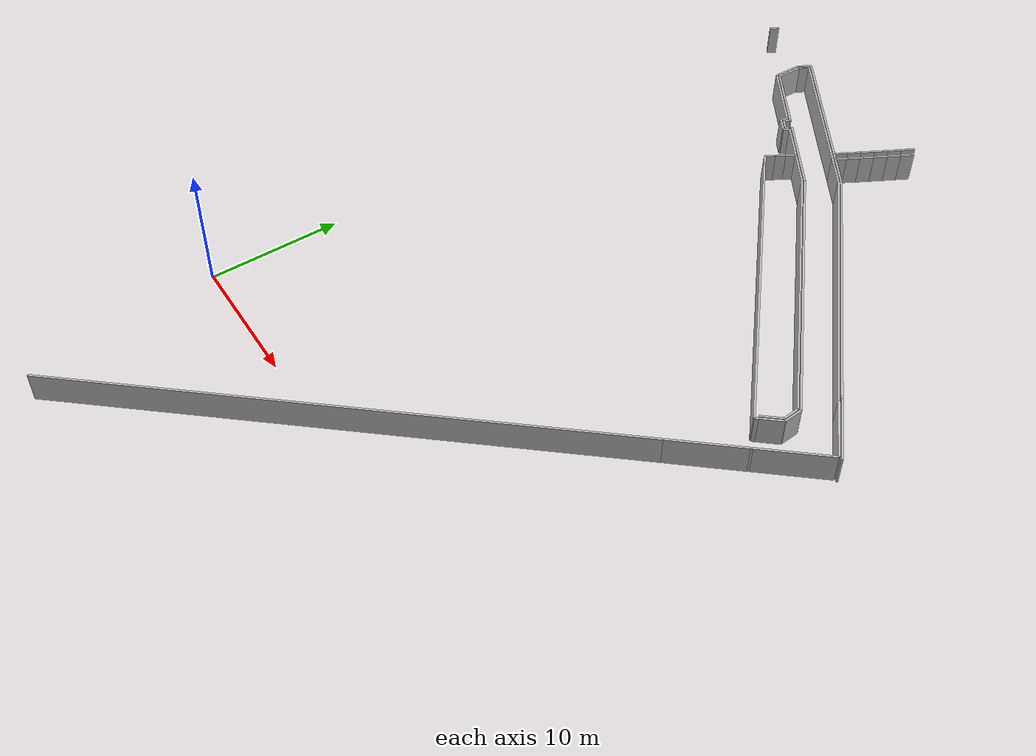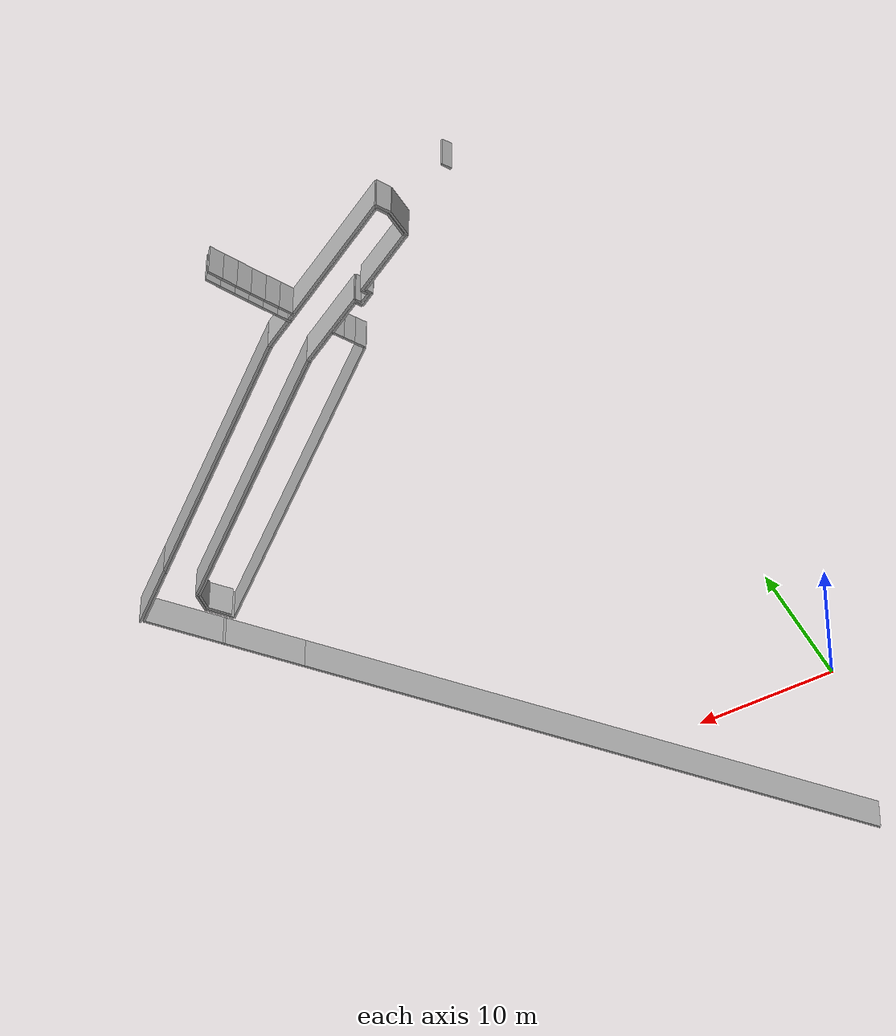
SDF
<?xml version="1.0" ?>
<sdf version="1.6">
  <model name="sps_0701">
    <pose frame="">0 0 0 0 -0 0</pose>
    <static>1</static>
    <self_collide>0</self_collide>
    <allow_auto_disable>0</allow_auto_disable>
    <link name="Wall161">
      <kinematic>0</kinematic>
      <gravity>1</gravity>
      <self_collide>0</self_collide>
      <collision name="collision">
        <geometry>
          <box>
            <size>21.7978 0.15 2.5</size>
          </box>
        </geometry>
        <pose frame="">0 0 0 0 -0 0</pose>
      </collision>
      <visual name="visual">
        <geometry>
          <box>
            <size>21.7978 0.15 2.5</size>
          </box>
        </geometry>
        <pose frame="">0 0 0 0 -0 0</pose>
        <cast_shadows>1</cast_shadows>
        <transparency>0.0</transparency>
      </visual>
      <pose frame="">25.3802 33.8894 1.25 0 0 -0.688117</pose>
    </link>
    <link name="Wall537">
      <kinematic>0</kinematic>
      <gravity>1</gravity>
      <self_collide>0</self_collide>
      <collision name="collision">
        <geometry>
          <box>
            <size>0.278779 0.15 2.5</size>
          </box>
        </geometry>
        <pose frame="">0 0 0 0 -0 0</pose>
      </collision>
      <visual name="visual">
        <geometry>
          <box>
            <size>0.278779 0.15 2.5</size>
          </box>
        </geometry>
        <pose frame="">0 0 0 0 -0 0</pose>
        <cast_shadows>1</cast_shadows>
        <transparency>0.0</transparency>
      </visual>
      <pose frame="">32.7358 24.0996 1.25 0 0 -2.26069</pose>
    </link>
    <link name="Wall538">
      <kinematic>0</kinematic>
      <gravity>1</gravity>
      <self_collide>0</self_collide>
      <collision name="collision">
        <geometry>
          <box>
            <size>1.24948 0.15 2.5</size>
          </box>
        </geometry>
        <pose frame="">0 0 0 0 -0 0</pose>
      </collision>
      <visual name="visual">
        <geometry>
          <box>
            <size>1.24948 0.15 2.5</size>
          </box>
        </geometry>
        <pose frame="">0 0 0 0 -0 0</pose>
        <cast_shadows>1</cast_shadows>
        <transparency>0.0</transparency>
      </visual>
      <pose frame="">33.6687 26.2439 1.25 0 -0 1.66796</pose>
    </link>
    <link name="Wall539">
      <kinematic>0</kinematic>
      <gravity>1</gravity>
      <self_collide>0</self_collide>
      <collision name="collision">
        <geometry>
          <box>
            <size>4.68794 0.15 2.5</size>
          </box>
        </geometry>
        <pose frame="">0 0 0 0 -0 0</pose>
      </collision>
      <visual name="visual">
        <geometry>
          <box>
            <size>4.68794 0.15 2.5</size>
          </box>
        </geometry>
        <pose frame="">0 0 0 0 -0 0</pose>
        <cast_shadows>1</cast_shadows>
        <transparency>0.0</transparency>
      </visual>
      <pose frame="">36.2801 28.1649 1.25 0 -0 2.45349</pose>
    </link>
    <link name="Wall540">
      <kinematic>0</kinematic>
      <gravity>1</gravity>
      <self_collide>0</self_collide>
      <collision name="collision">
        <geometry>
          <box>
            <size>20.8339 0.15 2.5</size>
          </box>
        </geometry>
        <pose frame="">0 0 0 0 -0 0</pose>
      </collision>
      <visual name="visual">
        <geometry>
          <box>
            <size>20.8339 0.15 2.5</size>
          </box>
        </geometry>
        <pose frame="">0 0 0 0 -0 0</pose>
        <cast_shadows>1</cast_shadows>
        <transparency>0.0</transparency>
      </visual>
      <pose frame="">26.4228 36.269 1.25 0 -0 2.45349</pose>
    </link>
    <link name="Wall862">
      <kinematic>0</kinematic>
      <gravity>1</gravity>
      <self_collide>0</self_collide>
      <collision name="collision">
        <geometry>
          <box>
            <size>5.12072 0.15 2.5</size>
          </box>
        </geometry>
        <pose frame="">0 0 0 0 -0 0</pose>
      </collision>
      <visual name="visual">
        <geometry>
          <box>
            <size>5.12072 0.15 2.5</size>
          </box>
        </geometry>
        <pose frame="">0 0 0 0 -0 0</pose>
        <cast_shadows>1</cast_shadows>
        <transparency>0.0</transparency>
      </visual>
      <pose frame="">8.61477 45.2415 1.25 0 -0 2.63254</pose>
    </link>
    <link name="Wall863">
      <kinematic>0</kinematic>
      <gravity>1</gravity>
      <self_collide>0</self_collide>
      <collision name="collision">
        <geometry>
          <box>
            <size>0.800268 0.15 2.5</size>
          </box>
        </geometry>
        <pose frame="">0 0 0 0 -0 0</pose>
      </collision>
      <visual name="visual">
        <geometry>
          <box>
            <size>0.800268 0.15 2.5</size>
          </box>
        </geometry>
        <pose frame="">0 0 0 0 -0 0</pose>
        <cast_shadows>1</cast_shadows>
        <transparency>0.0</transparency>
      </visual>
      <pose frame="">11.2273 43.4391 1.25 0 0 -0.508447</pose>
    </link>
    <link name="Wall867">
      <kinematic>0</kinematic>
      <gravity>1</gravity>
      <self_collide>0</self_collide>
      <collision name="collision">
        <geometry>
          <box>
            <size>10.1651 0.15 2.5</size>
          </box>
        </geometry>
        <pose frame="">0 0 0 0 -0 0</pose>
      </collision>
      <visual name="visual">
        <geometry>
          <box>
            <size>10.1651 0.15 2.5</size>
          </box>
        </geometry>
        <pose frame="">0 0 0 0 -0 0</pose>
        <cast_shadows>1</cast_shadows>
        <transparency>0.0</transparency>
      </visual>
      <pose frame="">11.3749 47.0215 1.25 0 0 -0.509148</pose>
    </link>
    <link name="Wall868">
      <kinematic>0</kinematic>
      <gravity>1</gravity>
      <self_collide>0</self_collide>
      <collision name="collision">
        <geometry>
          <box>
            <size>2.80678 0.15 2.5</size>
          </box>
        </geometry>
        <pose frame="">0 0 0 0 -0 0</pose>
      </collision>
      <visual name="visual">
        <geometry>
          <box>
            <size>2.80678 0.15 2.5</size>
          </box>
        </geometry>
        <pose frame="">0 0 0 0 -0 0</pose>
        <cast_shadows>1</cast_shadows>
        <transparency>0.0</transparency>
      </visual>
      <pose frame="">15.6233 41.3287 1.25 0 -0 2.63247</pose>
    </link>
    <link name="Wall869">
      <kinematic>0</kinematic>
      <gravity>1</gravity>
      <self_collide>0</self_collide>
      <collision name="collision">
        <geometry>
          <box>
            <size>5.88754 0.15 2.5</size>
          </box>
        </geometry>
        <pose frame="">0 0 0 0 -0 0</pose>
      </collision>
      <visual name="visual">
        <geometry>
          <box>
            <size>5.88754 0.15 2.5</size>
          </box>
        </geometry>
        <pose frame="">0 0 0 0 -0 0</pose>
        <cast_shadows>1</cast_shadows>
        <transparency>0.0</transparency>
      </visual>
      <pose frame="">14.391 42.2458 1.25 0 0 -0.50907</pose>
    </link>
    <link name="Wall1269">
      <kinematic>0</kinematic>
      <gravity>1</gravity>
      <self_collide>0</self_collide>
      <collision name="collision">
        <geometry>
          <box>
            <size>1.04957 0.15 2.5</size>
          </box>
        </geometry>
        <pose frame="">0 0 0 0 -0 0</pose>
      </collision>
      <visual name="visual">
        <geometry>
          <box>
            <size>1.04957 0.15 2.5</size>
          </box>
        </geometry>
        <pose frame="">0 0 0 0 -0 0</pose>
        <cast_shadows>1</cast_shadows>
        <transparency>0.0</transparency>
      </visual>
      <pose frame="">6.68124 49.0407 1.25 0 -0 1.06165</pose>
    </link>
    <link name="Wall1277">
      <kinematic>0</kinematic>
      <gravity>1</gravity>
      <self_collide>0</self_collide>
      <collision name="collision">
        <geometry>
          <box>
            <size>0.500684 0.15 2.5</size>
          </box>
        </geometry>
        <pose frame="">0 0 0 0 -0 0</pose>
      </collision>
      <visual name="visual">
        <geometry>
          <box>
            <size>0.500684 0.15 2.5</size>
          </box>
        </geometry>
        <pose frame="">0 0 0 0 -0 0</pose>
        <cast_shadows>1</cast_shadows>
        <transparency>0.0</transparency>
      </visual>
      <pose frame="">11.7757 43.1905 1.25 0 0 -2.07987</pose>
    </link>
    <link name="Wall1279">
      <kinematic>0</kinematic>
      <gravity>1</gravity>
      <self_collide>0</self_collide>
      <collision name="collision">
        <geometry>
          <box>
            <size>2.86369 0.15 2.5</size>
          </box>
        </geometry>
        <pose frame="">0 0 0 0 -0 0</pose>
      </collision>
      <visual name="visual">
        <geometry>
          <box>
            <size>2.86369 0.15 2.5</size>
          </box>
        </geometry>
        <pose frame="">0 0 0 0 -0 0</pose>
        <cast_shadows>1</cast_shadows>
        <transparency>0.0</transparency>
      </visual>
      <pose frame="">13.1478 42.7109 1.25 0 0 -0.509349</pose>
    </link>
    <link name="Wall1283">
      <kinematic>0</kinematic>
      <gravity>1</gravity>
      <self_collide>0</self_collide>
      <collision name="collision">
        <geometry>
          <box>
            <size>2.5506 0.15 2.5</size>
          </box>
        </geometry>
        <pose frame="">0 0 0 0 -0 0</pose>
      </collision>
      <visual name="visual">
        <geometry>
          <box>
            <size>2.5506 0.15 2.5</size>
          </box>
        </geometry>
        <pose frame="">0 0 0 0 -0 0</pose>
        <cast_shadows>1</cast_shadows>
        <transparency>0.0</transparency>
      </visual>
      <pose frame="">17.2627 43.5062 1.25 0 -0 2.63237</pose>
    </link>
    <link name="Wall1291">
      <kinematic>0</kinematic>
      <gravity>1</gravity>
      <self_collide>0</self_collide>
      <collision name="collision">
        <geometry>
          <box>
            <size>1.41499 0.15 2.5</size>
          </box>
        </geometry>
        <pose frame="">0 0 0 0 -0 0</pose>
      </collision>
      <visual name="visual">
        <geometry>
          <box>
            <size>1.41499 0.15 2.5</size>
          </box>
        </geometry>
        <pose frame="">0 0 0 0 -0 0</pose>
        <cast_shadows>1</cast_shadows>
        <transparency>0.0</transparency>
      </visual>
      <pose frame="">33.8673 26.2635 1.25 0 0 -1.47411</pose>
    </link>
    <link name="Wall1557">
      <kinematic>0</kinematic>
      <gravity>1</gravity>
      <self_collide>0</self_collide>
      <collision name="collision">
        <geometry>
          <box>
            <size>0.800215 0.15 2.5</size>
          </box>
        </geometry>
        <pose frame="">0 0 0 0 -0 0</pose>
      </collision>
      <visual name="visual">
        <geometry>
          <box>
            <size>0.800215 0.15 2.5</size>
          </box>
        </geometry>
        <pose frame="">0 0 0 0 -0 0</pose>
        <cast_shadows>1</cast_shadows>
        <transparency>0.0</transparency>
      </visual>
      <pose frame="">6.81945 48.878 1.25 0 0 -2.07928</pose>
    </link>
    <link name="Wall1563">
      <kinematic>0</kinematic>
      <gravity>1</gravity>
      <self_collide>0</self_collide>
      <collision name="collision">
        <geometry>
          <box>
            <size>3.06467 0.15 2.5</size>
          </box>
        </geometry>
        <pose frame="">0 0 0 0 -0 0</pose>
      </collision>
      <visual name="visual">
        <geometry>
          <box>
            <size>3.06467 0.15 2.5</size>
          </box>
        </geometry>
        <pose frame="">0 0 0 0 -0 0</pose>
        <cast_shadows>1</cast_shadows>
        <transparency>0.0</transparency>
      </visual>
      <pose frame="">17.1507 43.7971 1.25 0 0 -0.509221</pose>
    </link>
    <link name="Wall1572">
      <kinematic>0</kinematic>
      <gravity>1</gravity>
      <self_collide>0</self_collide>
      <collision name="collision">
        <geometry>
          <box>
            <size>1.75015 0.15 2.5</size>
          </box>
        </geometry>
        <pose frame="">0 0 0 0 -0 0</pose>
      </collision>
      <visual name="visual">
        <geometry>
          <box>
            <size>1.75015 0.15 2.5</size>
          </box>
        </geometry>
        <pose frame="">0 0 0 0 -0 0</pose>
        <cast_shadows>1</cast_shadows>
        <transparency>0.0</transparency>
      </visual>
      <pose frame="">33.3801 24.8832 1.25 0 0 -2.25866</pose>
    </link>
    <link name="Wall1874">
      <kinematic>0</kinematic>
      <gravity>1</gravity>
      <self_collide>0</self_collide>
      <collision name="collision">
        <geometry>
          <box>
            <size>0.500613 0.15 2.5</size>
          </box>
        </geometry>
        <pose frame="">0 0 0 0 -0 0</pose>
      </collision>
      <visual name="visual">
        <geometry>
          <box>
            <size>0.500613 0.15 2.5</size>
          </box>
        </geometry>
        <pose frame="">0 0 0 0 -0 0</pose>
        <cast_shadows>1</cast_shadows>
        <transparency>0.0</transparency>
      </visual>
      <pose frame="">10.9999 43.8524 1.25 0 0 -2.08037</pose>
    </link>
    <link name="Wall1890">
      <kinematic>0</kinematic>
      <gravity>1</gravity>
      <self_collide>0</self_collide>
      <collision name="collision">
        <geometry>
          <box>
            <size>25.1615 0.15 2.5</size>
          </box>
        </geometry>
        <pose frame="">0 0 0 0 -0 0</pose>
      </collision>
      <visual name="visual">
        <geometry>
          <box>
            <size>25.1615 0.15 2.5</size>
          </box>
        </geometry>
        <pose frame="">0 0 0 0 -0 0</pose>
        <cast_shadows>1</cast_shadows>
        <transparency>0.0</transparency>
      </visual>
      <pose frame="">22.9325 31.986 1.25 0 -0 2.45306</pose>
    </link>
    <link name="Wall1891">
      <kinematic>0</kinematic>
      <gravity>1</gravity>
      <self_collide>0</self_collide>
      <collision name="collision">
        <geometry>
          <box>
            <size>1.66707 0.15 2.5</size>
          </box>
        </geometry>
        <pose frame="">0 0 0 0 -0 0</pose>
      </collision>
      <visual name="visual">
        <geometry>
          <box>
            <size>1.66707 0.15 2.5</size>
          </box>
        </geometry>
        <pose frame="">0 0 0 0 -0 0</pose>
        <cast_shadows>1</cast_shadows>
        <transparency>0.0</transparency>
      </visual>
      <pose frame="">33.1996 24.9785 1.25 0 -0 0.882166</pose>
    </link>
    <link name="Wall1894">
      <kinematic>0</kinematic>
      <gravity>1</gravity>
      <self_collide>0</self_collide>
      <collision name="collision">
        <geometry>
          <box>
            <size>5.53125 0.15 2.5</size>
          </box>
        </geometry>
        <pose frame="">0 0 0 0 -0 0</pose>
      </collision>
      <visual name="visual">
        <geometry>
          <box>
            <size>5.53125 0.15 2.5</size>
          </box>
        </geometry>
        <pose frame="">0 0 0 0 -0 0</pose>
        <cast_shadows>1</cast_shadows>
        <transparency>0.0</transparency>
      </visual>
      <pose frame="">36.3344 24.5399 1.25 0 -0 0.882734</pose>
    </link>
    <link name="Wall2209">
      <kinematic>0</kinematic>
      <gravity>1</gravity>
      <self_collide>0</self_collide>
      <collision name="collision">
        <geometry>
          <box>
            <size>2.09371 0.15 2.5</size>
          </box>
        </geometry>
        <pose frame="">0 0 0 0 -0 0</pose>
      </collision>
      <visual name="visual">
        <geometry>
          <box>
            <size>2.09371 0.15 2.5</size>
          </box>
        </geometry>
        <pose frame="">0 0 0 0 -0 0</pose>
        <cast_shadows>1</cast_shadows>
        <transparency>0.0</transparency>
      </visual>
      <pose frame="">6.40224 47.5359 1.25 0 -0 1.54864</pose>
    </link>
    <link name="Wall2210">
      <kinematic>0</kinematic>
      <gravity>1</gravity>
      <self_collide>0</self_collide>
      <collision name="collision">
        <geometry>
          <box>
            <size>0.500379 0.15 2.5</size>
          </box>
        </geometry>
        <pose frame="">0 0 0 0 -0 0</pose>
      </collision>
      <visual name="visual">
        <geometry>
          <box>
            <size>0.500379 0.15 2.5</size>
          </box>
        </geometry>
        <pose frame="">0 0 0 0 -0 0</pose>
        <cast_shadows>1</cast_shadows>
        <transparency>0.0</transparency>
      </visual>
      <pose frame="">10.7281 43.7755 1.25 0 -0 1.05956</pose>
    </link>
    <link name="Wall2211">
      <kinematic>0</kinematic>
      <gravity>1</gravity>
      <self_collide>0</self_collide>
      <collision name="collision">
        <geometry>
          <box>
            <size>5.20018 0.15 2.5</size>
          </box>
        </geometry>
        <pose frame="">0 0 0 0 -0 0</pose>
      </collision>
      <visual name="visual">
        <geometry>
          <box>
            <size>5.20018 0.15 2.5</size>
          </box>
        </geometry>
        <pose frame="">0 0 0 0 -0 0</pose>
        <cast_shadows>1</cast_shadows>
        <transparency>0.0</transparency>
      </visual>
      <pose frame="">8.85165 45.3381 1.25 0 0 -0.509078</pose>
    </link>
    <link name="Wall2213">
      <kinematic>0</kinematic>
      <gravity>1</gravity>
      <self_collide>0</self_collide>
      <collision name="collision">
        <geometry>
          <box>
            <size>1.20039 0.15 2.5</size>
          </box>
        </geometry>
        <pose frame="">0 0 0 0 -0 0</pose>
      </collision>
      <visual name="visual">
        <geometry>
          <box>
            <size>1.20039 0.15 2.5</size>
          </box>
        </geometry>
        <pose frame="">0 0 0 0 -0 0</pose>
        <cast_shadows>1</cast_shadows>
        <transparency>0.0</transparency>
      </visual>
      <pose frame="">11.1297 43.2646 1.25 0 -0 2.63218</pose>
    </link>
    <link name="Wall2214">
      <kinematic>0</kinematic>
      <gravity>1</gravity>
      <self_collide>0</self_collide>
      <collision name="collision">
        <geometry>
          <box>
            <size>0.499623 0.15 2.5</size>
          </box>
        </geometry>
        <pose frame="">0 0 0 0 -0 0</pose>
      </collision>
      <visual name="visual">
        <geometry>
          <box>
            <size>0.499623 0.15 2.5</size>
          </box>
        </geometry>
        <pose frame="">0 0 0 0 -0 0</pose>
        <cast_shadows>1</cast_shadows>
        <transparency>0.0</transparency>
      </visual>
      <pose frame="">11.6987 43.4624 1.25 0 -0 1.06151</pose>
    </link>
    <link name="Wall2219">
      <kinematic>0</kinematic>
      <gravity>1</gravity>
      <self_collide>0</self_collide>
      <collision name="collision">
        <geometry>
          <box>
            <size>10.462 0.15 2.5</size>
          </box>
        </geometry>
        <pose frame="">0 0 0 0 -0 0</pose>
      </collision>
      <visual name="visual">
        <geometry>
          <box>
            <size>10.462 0.15 2.5</size>
          </box>
        </geometry>
        <pose frame="">0 0 0 0 -0 0</pose>
        <cast_shadows>1</cast_shadows>
        <transparency>0.0</transparency>
      </visual>
      <pose frame="">11.5817 46.6777 1.25 0 -0 2.63244</pose>
    </link>
    <link name="Wall2226">
      <kinematic>0</kinematic>
      <gravity>1</gravity>
      <self_collide>0</self_collide>
      <collision name="collision">
        <geometry>
          <box>
            <size>21.6965 0.15 2.5</size>
          </box>
        </geometry>
        <pose frame="">0 0 0 0 -0 0</pose>
      </collision>
      <visual name="visual">
        <geometry>
          <box>
            <size>21.6965 0.15 2.5</size>
          </box>
        </geometry>
        <pose frame="">0 0 0 0 -0 0</pose>
        <cast_shadows>1</cast_shadows>
        <transparency>0.0</transparency>
      </visual>
      <pose frame="">25.2284 33.7552 1.25 0 -0 2.45348</pose>
    </link>
    <link name="Wall2230">
      <kinematic>0</kinematic>
      <gravity>1</gravity>
      <self_collide>0</self_collide>
      <collision name="collision">
        <geometry>
          <box>
            <size>42.7461 0.15 2.5</size>
          </box>
        </geometry>
        <pose frame="">0 0 0 0 -0 0</pose>
      </collision>
      <visual name="visual">
        <geometry>
          <box>
            <size>42.7461 0.15 2.5</size>
          </box>
        </geometry>
        <pose frame="">0 0 0 0 -0 0</pose>
        <cast_shadows>1</cast_shadows>
        <transparency>0.0</transparency>
      </visual>
      <pose frame="">17.2958 1.38377 1.25 0 -0 0.882668</pose>
    </link>
    <link name="Wall2231">
      <kinematic>0</kinematic>
      <gravity>1</gravity>
      <self_collide>0</self_collide>
      <collision name="collision">
        <geometry>
          <box>
            <size>5.66817 0.15 2.5</size>
          </box>
        </geometry>
        <pose frame="">0 0 0 0 -0 0</pose>
      </collision>
      <visual name="visual">
        <geometry>
          <box>
            <size>5.66817 0.15 2.5</size>
          </box>
        </geometry>
        <pose frame="">0 0 0 0 -0 0</pose>
        <cast_shadows>1</cast_shadows>
        <transparency>0.0</transparency>
      </visual>
      <pose frame="">32.6695 20.0822 1.25 0 -0 0.882668</pose>
    </link>
    <link name="Wall2232">
      <kinematic>0</kinematic>
      <gravity>1</gravity>
      <self_collide>0</self_collide>
      <collision name="collision">
        <geometry>
          <box>
            <size>0.171066 0.15 2.5</size>
          </box>
        </geometry>
        <pose frame="">0 0 0 0 -0 0</pose>
      </collision>
      <visual name="visual">
        <geometry>
          <box>
            <size>0.171066 0.15 2.5</size>
          </box>
        </geometry>
        <pose frame="">0 0 0 0 -0 0</pose>
        <cast_shadows>1</cast_shadows>
        <transparency>0.0</transparency>
      </visual>
      <pose frame="">34.5238 22.3374 1.25 0 -0 0.882668</pose>
    </link>
    <link name="Wall2610">
      <kinematic>0</kinematic>
      <gravity>1</gravity>
      <self_collide>0</self_collide>
      <collision name="collision">
        <geometry>
          <box>
            <size>1.92371 0.15 2.5</size>
          </box>
        </geometry>
        <pose frame="">0 0 0 0 -0 0</pose>
      </collision>
      <visual name="visual">
        <geometry>
          <box>
            <size>1.92371 0.15 2.5</size>
          </box>
        </geometry>
        <pose frame="">0 0 0 0 -0 0</pose>
        <cast_shadows>1</cast_shadows>
        <transparency>0.0</transparency>
      </visual>
      <pose frame="">6.60296 47.5669 1.25 0 0 -1.59336</pose>
    </link>
    <link name="Wall2625">
      <kinematic>0</kinematic>
      <gravity>1</gravity>
      <self_collide>0</self_collide>
      <collision name="collision">
        <geometry>
          <box>
            <size>5.0524 0.15 2.5</size>
          </box>
        </geometry>
        <pose frame="">0 0 0 0 -0 0</pose>
      </collision>
      <visual name="visual">
        <geometry>
          <box>
            <size>5.0524 0.15 2.5</size>
          </box>
        </geometry>
        <pose frame="">0 0 0 0 -0 0</pose>
        <cast_shadows>1</cast_shadows>
        <transparency>0.0</transparency>
      </visual>
      <pose frame="">36.4209 28.308 1.25 0 -0 2.45352</pose>
    </link>
    <link name="Wall2626">
      <kinematic>0</kinematic>
      <gravity>1</gravity>
      <self_collide>0</self_collide>
      <collision name="collision">
        <geometry>
          <box>
            <size>20.6879 0.15 2.5</size>
          </box>
        </geometry>
        <pose frame="">0 0 0 0 -0 0</pose>
      </collision>
      <visual name="visual">
        <geometry>
          <box>
            <size>20.6879 0.15 2.5</size>
          </box>
        </geometry>
        <pose frame="">0 0 0 0 -0 0</pose>
        <cast_shadows>1</cast_shadows>
        <transparency>0.0</transparency>
      </visual>
      <pose frame="">26.4791 36.4811 1.25 0 -0 2.45352</pose>
    </link>
    <link name="Wall9694">
      <kinematic>0</kinematic>
      <gravity>1</gravity>
      <self_collide>0</self_collide>
      <collision name="collision">
        <geometry>
          <box>
            <size>0.783584 0.15 2.5</size>
          </box>
        </geometry>
        <pose frame="">0 0 0 0 -0 0</pose>
      </collision>
      <visual name="visual">
        <geometry>
          <box>
            <size>0.783584 0.15 2.5</size>
          </box>
        </geometry>
        <pose frame="">0 0 0 0 -0 0</pose>
        <cast_shadows>1</cast_shadows>
        <transparency>0.0</transparency>
      </visual>
      <pose frame="">14.2028 41.6729 1.25 0 0 -2.09178</pose>
    </link>
    <link name="Wall9695">
      <kinematic>0</kinematic>
      <gravity>1</gravity>
      <self_collide>0</self_collide>
      <collision name="collision">
        <geometry>
          <box>
            <size>0.783517 0.15 2.5</size>
          </box>
        </geometry>
        <pose frame="">0 0 0 0 -0 0</pose>
      </collision>
      <visual name="visual">
        <geometry>
          <box>
            <size>0.783517 0.15 2.5</size>
          </box>
        </geometry>
        <pose frame="">0 0 0 0 -0 0</pose>
        <cast_shadows>1</cast_shadows>
        <transparency>0.0</transparency>
      </visual>
      <pose frame="">13.8111 40.9943 1.25 0 0 -2.09677</pose>
    </link>
    <link name="Wall9696">
      <kinematic>0</kinematic>
      <gravity>1</gravity>
      <self_collide>0</self_collide>
      <collision name="collision">
        <geometry>
          <box>
            <size>0.783409 0.15 2.5</size>
          </box>
        </geometry>
        <pose frame="">0 0 0 0 -0 0</pose>
      </collision>
      <visual name="visual">
        <geometry>
          <box>
            <size>0.783409 0.15 2.5</size>
          </box>
        </geometry>
        <pose frame="">0 0 0 0 -0 0</pose>
        <cast_shadows>1</cast_shadows>
        <transparency>0.0</transparency>
      </visual>
      <pose frame="">13.4162 40.3177 1.25 0 0 -2.10164</pose>
    </link>
    <link name="Wall16823">
      <kinematic>0</kinematic>
      <gravity>1</gravity>
      <self_collide>0</self_collide>
      <collision name="collision">
        <geometry>
          <box>
            <size>1.0394 0.15 2.5</size>
          </box>
        </geometry>
        <pose frame="">0 0 0 0 -0 0</pose>
      </collision>
      <visual name="visual">
        <geometry>
          <box>
            <size>1.0394 0.15 2.5</size>
          </box>
        </geometry>
        <pose frame="">0 0 0 0 -0 0</pose>
        <cast_shadows>1</cast_shadows>
        <transparency>0.0</transparency>
      </visual>
      <pose frame="">16.4914 44.5311 1.25 0 -0 1.0729</pose>
    </link>
    <link name="Wall16824">
      <kinematic>0</kinematic>
      <gravity>1</gravity>
      <self_collide>0</self_collide>
      <collision name="collision">
        <geometry>
          <box>
            <size>1.03927 0.15 2.5</size>
          </box>
        </geometry>
        <pose frame="">0 0 0 0 -0 0</pose>
      </collision>
      <visual name="visual">
        <geometry>
          <box>
            <size>1.03927 0.15 2.5</size>
          </box>
        </geometry>
        <pose frame="">0 0 0 0 -0 0</pose>
        <cast_shadows>1</cast_shadows>
        <transparency>0.0</transparency>
      </visual>
      <pose frame="">16.9848 45.4459 1.25 0 -0 1.07957</pose>
    </link>
    <link name="Wall16825">
      <kinematic>0</kinematic>
      <gravity>1</gravity>
      <self_collide>0</self_collide>
      <collision name="collision">
        <geometry>
          <box>
            <size>1.03922 0.15 2.5</size>
          </box>
        </geometry>
        <pose frame="">0 0 0 0 -0 0</pose>
      </collision>
      <visual name="visual">
        <geometry>
          <box>
            <size>1.03922 0.15 2.5</size>
          </box>
        </geometry>
        <pose frame="">0 0 0 0 -0 0</pose>
        <cast_shadows>1</cast_shadows>
        <transparency>0.0</transparency>
      </visual>
      <pose frame="">17.4721 46.3638 1.25 0 -0 1.08592</pose>
    </link>
    <link name="Wall16826">
      <kinematic>0</kinematic>
      <gravity>1</gravity>
      <self_collide>0</self_collide>
      <collision name="collision">
        <geometry>
          <box>
            <size>1.03934 0.15 2.5</size>
          </box>
        </geometry>
        <pose frame="">0 0 0 0 -0 0</pose>
      </collision>
      <visual name="visual">
        <geometry>
          <box>
            <size>1.03934 0.15 2.5</size>
          </box>
        </geometry>
        <pose frame="">0 0 0 0 -0 0</pose>
        <cast_shadows>1</cast_shadows>
        <transparency>0.0</transparency>
      </visual>
      <pose frame="">17.9534 47.2849 1.25 0 -0 1.09268</pose>
    </link>
    <link name="Wall16827">
      <kinematic>0</kinematic>
      <gravity>1</gravity>
      <self_collide>0</self_collide>
      <collision name="collision">
        <geometry>
          <box>
            <size>1.03924 0.15 2.5</size>
          </box>
        </geometry>
        <pose frame="">0 0 0 0 -0 0</pose>
      </collision>
      <visual name="visual">
        <geometry>
          <box>
            <size>1.03924 0.15 2.5</size>
          </box>
        </geometry>
        <pose frame="">0 0 0 0 -0 0</pose>
        <cast_shadows>1</cast_shadows>
        <transparency>0.0</transparency>
      </visual>
      <pose frame="">18.4286 48.2092 1.25 0 -0 1.09916</pose>
    </link>
    <link name="Wall16828">
      <kinematic>0</kinematic>
      <gravity>1</gravity>
      <self_collide>0</self_collide>
      <collision name="collision">
        <geometry>
          <box>
            <size>1.03918 0.15 2.5</size>
          </box>
        </geometry>
        <pose frame="">0 0 0 0 -0 0</pose>
      </collision>
      <visual name="visual">
        <geometry>
          <box>
            <size>1.03918 0.15 2.5</size>
          </box>
        </geometry>
        <pose frame="">0 0 0 0 -0 0</pose>
        <cast_shadows>1</cast_shadows>
        <transparency>0.0</transparency>
      </visual>
      <pose frame="">18.8976 49.1365 1.25 0 -0 1.10578</pose>
    </link>
    <link name="Wall19429">
      <kinematic>0</kinematic>
      <gravity>1</gravity>
      <self_collide>0</self_collide>
      <collision name="collision">
        <geometry>
          <box>
            <size>1.03625 0.15 2.5</size>
          </box>
        </geometry>
        <pose frame="">0 0 0 0 -0 0</pose>
      </collision>
      <visual name="visual">
        <geometry>
          <box>
            <size>1.03625 0.15 2.5</size>
          </box>
        </geometry>
        <pose frame="">0 0 0 0 -0 0</pose>
        <cast_shadows>1</cast_shadows>
        <transparency>0.0</transparency>
      </visual>
      <pose frame="">16.0601 44.9994 1.25 0 -0 1.07319</pose>
    </link>
    <link name="Wall19430">
      <kinematic>0</kinematic>
      <gravity>1</gravity>
      <self_collide>0</self_collide>
      <collision name="collision">
        <geometry>
          <box>
            <size>1.03631 0.15 2.5</size>
          </box>
        </geometry>
        <pose frame="">0 0 0 0 -0 0</pose>
      </collision>
      <visual name="visual">
        <geometry>
          <box>
            <size>1.03631 0.15 2.5</size>
          </box>
        </geometry>
        <pose frame="">0 0 0 0 -0 0</pose>
        <cast_shadows>1</cast_shadows>
        <transparency>0.0</transparency>
      </visual>
      <pose frame="">16.5517 45.9117 1.25 0 -0 1.08004</pose>
    </link>
    <link name="Wall19431">
      <kinematic>0</kinematic>
      <gravity>1</gravity>
      <self_collide>0</self_collide>
      <collision name="collision">
        <geometry>
          <box>
            <size>1.03625 0.15 2.5</size>
          </box>
        </geometry>
        <pose frame="">0 0 0 0 -0 0</pose>
      </collision>
      <visual name="visual">
        <geometry>
          <box>
            <size>1.03625 0.15 2.5</size>
          </box>
        </geometry>
        <pose frame="">0 0 0 0 -0 0</pose>
        <cast_shadows>1</cast_shadows>
        <transparency>0.0</transparency>
      </visual>
      <pose frame="">17.0369 46.8273 1.25 0 -0 1.08681</pose>
    </link>
    <link name="Wall19432">
      <kinematic>0</kinematic>
      <gravity>1</gravity>
      <self_collide>0</self_collide>
      <collision name="collision">
        <geometry>
          <box>
            <size>1.03621 0.15 2.5</size>
          </box>
        </geometry>
        <pose frame="">0 0 0 0 -0 0</pose>
      </collision>
      <visual name="visual">
        <geometry>
          <box>
            <size>1.03621 0.15 2.5</size>
          </box>
        </geometry>
        <pose frame="">0 0 0 0 -0 0</pose>
        <cast_shadows>1</cast_shadows>
        <transparency>0.0</transparency>
      </visual>
      <pose frame="">17.5159 47.7462 1.25 0 -0 1.0939</pose>
    </link>
    <link name="Wall19433">
      <kinematic>0</kinematic>
      <gravity>1</gravity>
      <self_collide>0</self_collide>
      <collision name="collision">
        <geometry>
          <box>
            <size>1.03625 0.15 2.5</size>
          </box>
        </geometry>
        <pose frame="">0 0 0 0 -0 0</pose>
      </collision>
      <visual name="visual">
        <geometry>
          <box>
            <size>1.03625 0.15 2.5</size>
          </box>
        </geometry>
        <pose frame="">0 0 0 0 -0 0</pose>
        <cast_shadows>1</cast_shadows>
        <transparency>0.0</transparency>
      </visual>
      <pose frame="">17.9885 48.6684 1.25 0 -0 1.10054</pose>
    </link>
    <link name="Wall19434">
      <kinematic>0</kinematic>
      <gravity>1</gravity>
      <self_collide>0</self_collide>
      <collision name="collision">
        <geometry>
          <box>
            <size>1.03623 0.15 2.5</size>
          </box>
        </geometry>
        <pose frame="">0 0 0 0 -0 0</pose>
      </collision>
      <visual name="visual">
        <geometry>
          <box>
            <size>1.03623 0.15 2.5</size>
          </box>
        </geometry>
        <pose frame="">0 0 0 0 -0 0</pose>
        <cast_shadows>1</cast_shadows>
        <transparency>0.0</transparency>
      </visual>
      <pose frame="">18.4549 49.5937 1.25 0 -0 1.10712</pose>
    </link>
    <link name="Wall25231">
      <kinematic>0</kinematic>
      <gravity>1</gravity>
      <self_collide>0</self_collide>
      <collision name="collision">
        <geometry>
          <box>
            <size>0.720928 0.15 2.5</size>
          </box>
        </geometry>
        <pose frame="">0 0 0 0 -0 0</pose>
      </collision>
      <visual name="visual">
        <geometry>
          <box>
            <size>0.720928 0.15 2.5</size>
          </box>
        </geometry>
        <pose frame="">0 0 0 0 -0 0</pose>
        <cast_shadows>1</cast_shadows>
        <transparency>0.0</transparency>
      </visual>
      <pose frame="">1.65716 49.9526 1.25 0 -0 1.05586</pose>
    </link>
  </model>
</sdf>
